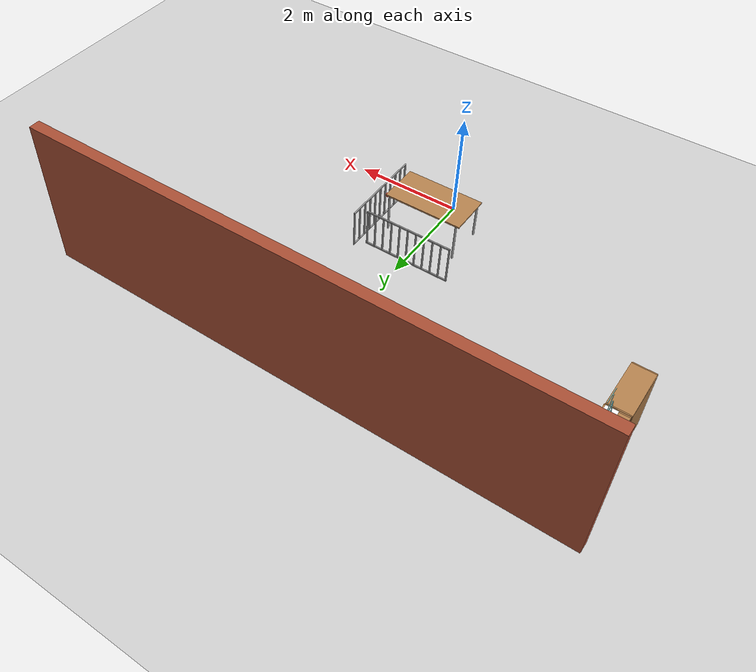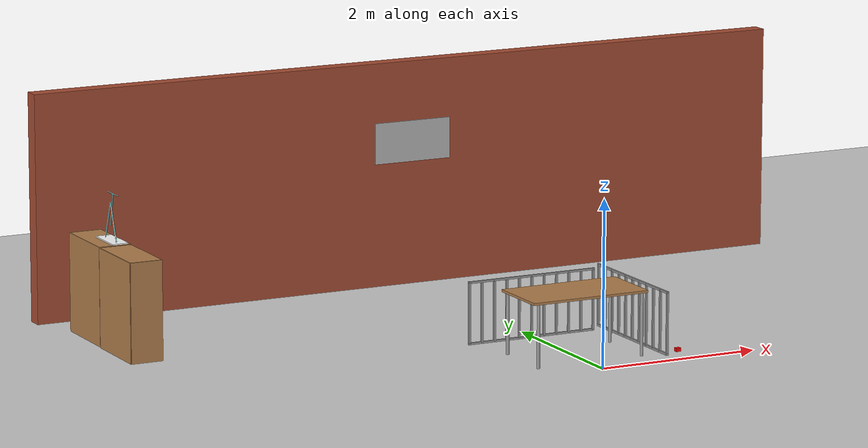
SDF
<sdf version="1.7">
 <world name="ufba_modificado">
  <model name="ground_plane">
   <static>1</static>
   <link name="link">
    <collision name="collision">
     <geometry><plane><normal>0 0 1</normal><size>100 100</size></plane></geometry>
     <surface>
      <contact><collide_bitmask>65535</collide_bitmask></contact>
      <friction><ode><mu>100</mu><mu2>50</mu2></ode></friction>
     </surface>
    </collision>
    <visual name="visual">
     <cast_shadows>0</cast_shadows>
     <geometry><plane><normal>0 0 1</normal><size>100 100</size></plane></geometry>
     <material>
      <script><uri>file://media/materials/scripts/gazebo.material</uri><name>Gazebo/Grey</name></script>
     </material>
    </visual>
   </link>
  </model>
  <model name="parede_norte">
   <static>1</static>
   <pose>0 5 1.4 0 -0 0</pose>
   <link name="link">
    <collision name="collision"><geometry><box><size>10 0.2 2.8</size></box></geometry></collision>
    <visual name="visual">
     <geometry><box><size>10 0.2 2.8</size></box></geometry>
     <material>
      <script><uri>file://media/materials/scripts/gazebo.material</uri><name>Gazebo/Bricks</name></script>
     </material>
    </visual>
   </link>
  </model>
  <model name="prateleira_1">
   <static>1</static>
   <link name="link">
    <inertial><mass>1</mass></inertial>
    <collision name="back">
     <pose>0 0.005 0.6 0 -0 0</pose>
     <geometry><box><size>0.9 0.01 1.2</size></box></geometry>
    </collision>
    <visual name="visual1">
     <pose>0 0.005 0.6 0 -0 0</pose>
     <geometry><box><size>0.9 0.01 1.2</size></box></geometry>
     <material>
      <script><uri>file://media/materials/scripts/gazebo.material</uri><name>Gazebo/Wood</name></script>
     </material>
    </visual>
    <collision name="left_side">
     <pose>0.45 -0.195 0.6 0 -0 0</pose>
     <geometry><box><size>0.02 0.4 1.2</size></box></geometry>
    </collision>
    <visual name="visual2">
     <pose>0.45 -0.195 0.6 0 -0 0</pose>
     <geometry><box><size>0.02 0.4 1.2</size></box></geometry>
     <material>
      <script><uri>file://media/materials/scripts/gazebo.material</uri><name>Gazebo/Wood</name></script>
     </material>
    </visual>
    <collision name="right_side">
     <pose>-0.45 -0.195 0.6 0 -0 0</pose>
     <geometry><box><size>0.02 0.4 1.2</size></box></geometry>
    </collision>
    <visual name="visual3">
     <pose>-0.45 -0.195 0.6 0 -0 0</pose>
     <geometry><box><size>0.02 0.4 1.2</size></box></geometry>
     <material>
      <script><uri>file://media/materials/scripts/gazebo.material</uri><name>Gazebo/Wood</name></script>
     </material>
    </visual>
    <collision name="bottom">
     <pose>0 -0.195 0.03 0 -0 0</pose>
     <geometry><box><size>0.88 0.4 0.06</size></box></geometry>
    </collision>
    <visual name="visual4">
     <pose>0 -0.195 0.03 0 -0 0</pose>
     <geometry><box><size>0.88 0.4 0.06</size></box></geometry>
     <material>
      <script><uri>file://media/materials/scripts/gazebo.material</uri><name>Gazebo/Wood</name></script>
     </material>
    </visual>
    <collision name="top">
     <pose>0 -0.195 1.19 0 -0 0</pose>
     <geometry><box><size>0.88 0.4 0.02</size></box></geometry>
    </collision>
    <visual name="visual5">
     <pose>0 -0.195 1.19 0 -0 0</pose>
     <geometry><box><size>0.88 0.4 0.02</size></box></geometry>
     <material>
      <script><uri>file://media/materials/scripts/gazebo.material</uri><name>Gazebo/Wood</name></script>
     </material>
    </visual>
    <collision name="low_shelf">
     <pose>0 -0.195 0.43 0 -0 0</pose>
     <geometry><box><size>0.88 0.4 0.02</size></box></geometry>
    </collision>
    <visual name="visual6">
     <pose>0 -0.195 0.43 0 -0 0</pose>
     <geometry><box><size>0.88 0.4 0.02</size></box></geometry>
     <material>
      <script><uri>file://media/materials/scripts/gazebo.material</uri><name>Gazebo/Wood</name></script>
     </material>
    </visual>
    <collision name="high_shelf">
     <pose>0 -0.195 0.8 0 -0 0</pose>
     <geometry><box><size>0.88 0.4 0.02</size></box></geometry>
    </collision>
    <visual name="visual7">
     <pose>0 -0.195 0.8 0 -0 0</pose>
     <geometry><box><size>0.88 0.4 0.02</size></box></geometry>
     <material>
      <script><uri>file://media/materials/scripts/gazebo.material</uri><name>Gazebo/Wood</name></script>
     </material>
    </visual>
   </link>
   <pose>-4.77065 3.0608 0 0 -0 1.5707</pose>
  </model>
  <model name="unit_box_red_100">
   <link name="link">
    <inertial>
     <mass>0.1</mass>
     <inertia>
      <ixx>5.763e-05</ixx>
      <ixy>0</ixy>
      <ixz>0</ixz>
      <iyy>6.331e-05</iyy>
      <iyz>0</iyz>
      <izz>6.119e-05</izz>
     </inertia>
    </inertial>
    <visual name="visual">
     <geometry><box><size>0.063346 0.05771 0.059872</size></box></geometry>
     <material>
      <script><name>Gazebo/Grey</name><uri>file://media/materials/scripts/gazebo.material</uri></script>
      <ambient>1 0 0 1</ambient>
      <shader type="vertex"><normal_map>__default__</normal_map></shader>
      <diffuse>0.7 0.7 0.7 1</diffuse>
      <specular>0.01 0.01 0.01 1</specular>
      <emissive>0 0 0 1</emissive>
     </material>
    </visual>
    <collision name="collision">
     <geometry><box><size>0.063346 0.05771 0.059872</size></box></geometry>
     <surface>
      <friction>
       <ode><mu>100</mu><mu2>100</mu2><fdir1>0 0 0</fdir1><slip1>0</slip1><slip2>0</slip2></ode>
       <torsional>
        <coefficient>1</coefficient>
        <patch_radius>0</patch_radius>
        <surface_radius>0</surface_radius>
        <use_patch_radius>1</use_patch_radius>
        <ode><slip>0</slip></ode>
       </torsional>
      </friction>
      <bounce><restitution_coefficient>0</restitution_coefficient><threshold>1e+06</threshold></bounce>
      <contact>
       <collide_without_contact>0</collide_without_contact>
       <collide_without_contact_bitmask>1</collide_without_contact_bitmask>
       <collide_bitmask>1</collide_bitmask>
       <ode>
        <soft_cfm>0</soft_cfm>
        <soft_erp>0.2</soft_erp>
        <kp>1e+13</kp>
        <kd>1</kd>
        <max_vel>0.01</max_vel>
        <min_depth>0</min_depth>
       </ode>
       <bullet>
        <split_impulse>1</split_impulse>
        <split_impulse_penetration_threshold>-0.01</split_impulse_penetration_threshold>
        <soft_cfm>0</soft_cfm>
        <soft_erp>0.2</soft_erp>
        <kp>1e+13</kp>
        <kd>1</kd>
       </bullet>
      </contact>
     </surface>
    </collision>
   </link>
   <static>0</static>
   <pose>1.21138 0.388999 0 0 -0 0</pose>
  </model>
  <model name="placa_ufba_na_parede">
   <static>1</static>
   <pose>0 4.89 1.8 0 -0 0</pose>
   <link name="link">
    <visual name="visual">
     <geometry><box><size>1.024 0.01 0.512</size></box></geometry>
     <material>
      <script><uri>file://materials/scripts/ufba_logo.material</uri><name>Ufba/Logo</name></script>
     </material>
    </visual>
   </link>
  </model>
  <model name="prateleira_1_clone">
   <static>1</static>
   <link name="link">
    <inertial><mass>1</mass></inertial>
    <collision name="back">
     <pose>0 0.005 0.6 0 -0 0</pose>
     <geometry><box><size>0.9 0.01 1.2</size></box></geometry>
    </collision>
    <visual name="visual1">
     <pose>0 0.005 0.6 0 -0 0</pose>
     <geometry><box><size>0.9 0.01 1.2</size></box></geometry>
     <material>
      <script><uri>file://media/materials/scripts/gazebo.material</uri><name>Gazebo/Wood</name></script>
     </material>
    </visual>
    <collision name="left_side">
     <pose>0.45 -0.195 0.6 0 -0 0</pose>
     <geometry><box><size>0.02 0.4 1.2</size></box></geometry>
    </collision>
    <visual name="visual2">
     <pose>0.45 -0.195 0.6 0 -0 0</pose>
     <geometry><box><size>0.02 0.4 1.2</size></box></geometry>
     <material>
      <script><uri>file://media/materials/scripts/gazebo.material</uri><name>Gazebo/Wood</name></script>
     </material>
    </visual>
    <collision name="right_side">
     <pose>-0.45 -0.195 0.6 0 -0 0</pose>
     <geometry><box><size>0.02 0.4 1.2</size></box></geometry>
    </collision>
    <visual name="visual3">
     <pose>-0.45 -0.195 0.6 0 -0 0</pose>
     <geometry><box><size>0.02 0.4 1.2</size></box></geometry>
     <material>
      <script><uri>file://media/materials/scripts/gazebo.material</uri><name>Gazebo/Wood</name></script>
     </material>
    </visual>
    <collision name="bottom">
     <pose>0 -0.195 0.03 0 -0 0</pose>
     <geometry><box><size>0.88 0.4 0.06</size></box></geometry>
    </collision>
    <visual name="visual4">
     <pose>0 -0.195 0.03 0 -0 0</pose>
     <geometry><box><size>0.88 0.4 0.06</size></box></geometry>
     <material>
      <script><uri>file://media/materials/scripts/gazebo.material</uri><name>Gazebo/Wood</name></script>
     </material>
    </visual>
    <collision name="top">
     <pose>0 -0.195 1.19 0 -0 0</pose>
     <geometry><box><size>0.88 0.4 0.02</size></box></geometry>
    </collision>
    <visual name="visual5">
     <pose>0 -0.195 1.19 0 -0 0</pose>
     <geometry><box><size>0.88 0.4 0.02</size></box></geometry>
     <material>
      <script><uri>file://media/materials/scripts/gazebo.material</uri><name>Gazebo/Wood</name></script>
     </material>
    </visual>
    <collision name="low_shelf">
     <pose>0 -0.195 0.43 0 -0 0</pose>
     <geometry><box><size>0.88 0.4 0.02</size></box></geometry>
    </collision>
    <visual name="visual6">
     <pose>0 -0.195 0.43 0 -0 0</pose>
     <geometry><box><size>0.88 0.4 0.02</size></box></geometry>
     <material>
      <script><uri>file://media/materials/scripts/gazebo.material</uri><name>Gazebo/Wood</name></script>
     </material>
    </visual>
    <collision name="high_shelf">
     <pose>0 -0.195 0.8 0 -0 0</pose>
     <geometry><box><size>0.88 0.4 0.02</size></box></geometry>
    </collision>
    <visual name="visual7">
     <pose>0 -0.195 0.8 0 -0 0</pose>
     <geometry><box><size>0.88 0.4 0.02</size></box></geometry>
     <material>
      <script><uri>file://media/materials/scripts/gazebo.material</uri><name>Gazebo/Wood</name></script>
     </material>
    </visual>
   </link>
   <pose>-4.76009 3.98886 0 0 -0 1.5707</pose>
  </model>
  <model name="pendulum">
   <link name="base">
    <inertial>
     <inertia><ixx>1</ixx><ixy>0</ixy><ixz>0</ixz><iyy>1</iyy><iyz>0</iyz><izz>1</izz></inertia>
     <mass>1</mass>
    </inertial>
    <visual name="vis_plate_on_ground">
     <pose>-0 0.001 0.0005 0 -0 0</pose>
     <geometry><box><size>0.2 0.5 0.015</size></box></geometry>
     <material>
      <ambient>1 1 1 1</ambient>
      <diffuse>1 1 1 1</diffuse>
      <specular>1 1 1 1</specular>
      <pbr>
       <metal>
        <albedo_map>materials/Wood/Wood_COLOR.jpg</albedo_map>
        <normal_map>materials/Wood/Wood_NORM.jpg</normal_map>
        <roughness_map>materials/Wood/Wood_ROUGH.jpg</roughness_map>
       </metal>
      </pbr>
     </material>
    </visual>
    <visual name="vis_pole">
     <pose>-0.01375 0.0819 0.225 0.349 -0 0</pose>
     <geometry><cylinder><length>0.4788</length><radius>0.007</radius></cylinder></geometry>
     <material>
      <ambient>0.66 1 1 1</ambient>
      <diffuse>0.66 1 1 1</diffuse>
      <specular>0.66 1 1 1</specular>
      <pbr><metal><metalness>0.9</metalness></metal></pbr>
     </material>
    </visual>
    <visual name="vis_pole2">
     <pose>-0.01375 -0.0819 0.225 -0.349 0 0</pose>
     <geometry><cylinder><length>0.4788</length><radius>0.007</radius></cylinder></geometry>
     <material>
      <ambient>0.66 1 1 1</ambient>
      <diffuse>0.66 1 1 1</diffuse>
      <specular>0.66 1 1 1</specular>
      <pbr><metal><metalness>0.9</metalness></metal></pbr>
     </material>
    </visual>
    <collision name="col_plate_on_ground">
     <pose>-0 0.001 0.0005 0 -0 0</pose>
     <geometry><box><size>0.2 0.5 0.015</size></box></geometry>
     <density>2710.0</density>
    </collision>
    <collision name="col_pole">
     <pose>-0.01375 0.0819 0.225 0.349 -0 0</pose>
     <geometry><cylinder><length>0.4788</length><radius>0.007</radius></cylinder></geometry>
     <density>2710</density>
    </collision>
    <collision name="col_pole2">
     <pose>-0.01375 -0.0819 0.225 -0.349 0 0</pose>
     <geometry><cylinder><length>0.4788</length><radius>0.007</radius></cylinder></geometry>
     <density>2710</density>
    </collision>
   </link>
   <link name="upper_link">
    <pose>0 0.017 0.355 0.2 -0 0</pose>
    <inertial>
     <inertia><ixx>1</ixx><ixy>0</ixy><ixz>0</ixz><iyy>1</iyy><iyz>0</iyz><izz>1</izz></inertia>
     <mass>1</mass>
    </inertial>
    <visual name="vis_upper_joint">
     <pose>-0.0025 0 0.0875 3.14159 1.57079 3.14159</pose>
     <geometry><cylinder><radius>0.005</radius><length>0.015</length></cylinder></geometry>
     <material>
      <ambient>0.66 1 1 1</ambient>
      <diffuse>0.66 1 1 1</diffuse>
      <specular>0.66 1 1 1</specular>
      <pbr><metal><metalness>0.9</metalness></metal></pbr>
     </material>
    </visual>
    <visual name="vis_bob2">
     <pose>0.01 0 0.2 3.14159 1.57079 3.14159</pose>
     <geometry><cylinder><radius>0.005</radius><length>0.02</length></cylinder></geometry>
     <material>
      <ambient>0.66 1 1 1</ambient>
      <diffuse>0.66 1 1 1</diffuse>
      <specular>0.66 1 1 1</specular>
      <pbr><metal><metalness>0.9</metalness></metal></pbr>
     </material>
    </visual>
    <visual name="vis_cylinder">
     <pose>0.01 0 0 0 -0 0</pose>
     <geometry><cylinder><radius>0.005</radius><length>0.395</length></cylinder></geometry>
     <material>
      <ambient>0.66 1 1 1</ambient>
      <diffuse>0.66 1 1 1</diffuse>
      <specular>0.66 1 1 1</specular>
      <pbr><metal><metalness>0.9</metalness></metal></pbr>
     </material>
    </visual>
    <collision name="col_upper_joint">
     <pose>-0.0025 0 0.0875 3.14159 1.57079 3.14159</pose>
     <geometry><cylinder><radius>0.01</radius><length>0.015</length></cylinder></geometry>
     <density>2710</density>
    </collision>
    <collision name="col_bob2">
     <pose>0.01 0 0.207 3.14159 1.57079 3.14159</pose>
     <geometry><cylinder><radius>0.01</radius><length>0.02</length></cylinder></geometry>
     <density>2710</density>
    </collision>
    <collision name="col_cylinder">
     <pose>0.01 0 0 0 -0 0</pose>
     <geometry><cylinder><radius>0.005</radius><length>0.395</length></cylinder></geometry>
     <density>2710</density>
    </collision>
   </link>
   <link name="lower_link">
    <pose>0.025 -0.02 0.55 -1.57 0 0</pose>
    <inertial>
     <inertia><ixx>1</ixx><ixy>0</ixy><ixz>0</ixz><iyy>1</iyy><iyz>0</iyz><izz>1</izz></inertia>
     <mass>1</mass>
    </inertial>
    <visual name="vis_cylinder">
     <pose>0 0 0.025 0 -0 0</pose>
     <geometry><cylinder><radius>0.005</radius><length>0.3</length></cylinder></geometry>
     <material>
      <ambient>0.66 1 1 1</ambient>
      <diffuse>0.66 1 1 1</diffuse>
      <specular>0.66 1 1 1</specular>
      <pbr><metal><metalness>0.9</metalness></metal></pbr>
     </material>
    </visual>
    <collision name="col_cylinder">
     <pose>0 0 0.025 0 -0 0</pose>
     <geometry><cylinder><radius>0.005</radius><length>0.3</length></cylinder></geometry>
     <density>2710</density>
    </collision>
   </link>
   <joint name="upper_joint" type="revolute">
    <pose>-0.0025 0 0.0875 0 -0 0</pose>
    <parent>base</parent>
    <child>upper_link</child>
    <axis>
     <xyz>1 0 0</xyz>
     <limit><lower>-1e+16</lower><upper>1e+16</upper></limit>
     <dynamics><spring_reference>0</spring_reference><spring_stiffness>0</spring_stiffness></dynamics>
    </axis>
   </joint>
   <joint name="lower_joint" type="revolute">
    <pose relative_to="upper_link">0.01 0 0.2 0 -0 0</pose>
    <parent>upper_link</parent>
    <child>lower_link</child>
    <axis>
     <xyz>1 0 0</xyz>
     <limit><lower>-1e+16</lower><upper>1e+16</upper></limit>
     <dynamics><spring_reference>0</spring_reference><spring_stiffness>0</spring_stiffness></dynamics>
    </axis>
   </joint>
   <pose>-4.49231 3.79783 1.207 -5e-06 1e-06 -9.7e-05</pose>
  </model>
  <model name="mesa_escritorio_clone">
   <static>1</static>
   <link name="link">
    <collision name="surface">
     <pose>0 0 1 0 -0 0</pose>
     <geometry><box><size>1.5 0.8 0.03</size></box></geometry>
     <surface><friction><ode><mu>0.6</mu><mu2>0.6</mu2></ode></friction></surface>
    </collision>
    <visual name="visual1">
     <pose>0 0 1 0 -0 0</pose>
     <geometry><box><size>1.5 0.8 0.03</size></box></geometry>
     <material>
      <script><uri>file://media/materials/scripts/gazebo.material</uri><name>Gazebo/Wood</name></script>
     </material>
    </visual>
    <collision name="front_left_leg">
     <pose>0.68 0.38 0.5 0 -0 0</pose>
     <geometry><cylinder><radius>0.02</radius><length>1</length></cylinder></geometry>
    </collision>
    <visual name="front_left_leg">
     <pose>0.68 0.38 0.5 0 -0 0</pose>
     <geometry><cylinder><radius>0.02</radius><length>1</length></cylinder></geometry>
     <material>
      <script><uri>file://media/materials/scripts/gazebo.material</uri><name>Gazebo/Grey</name></script>
     </material>
    </visual>
    <collision name="front_right_leg">
     <pose>0.68 -0.38 0.5 0 -0 0</pose>
     <geometry><cylinder><radius>0.02</radius><length>1</length></cylinder></geometry>
    </collision>
    <visual name="front_right_leg">
     <pose>0.68 -0.38 0.5 0 -0 0</pose>
     <geometry><cylinder><radius>0.02</radius><length>1</length></cylinder></geometry>
     <material>
      <script><uri>file://media/materials/scripts/gazebo.material</uri><name>Gazebo/Grey</name></script>
     </material>
    </visual>
    <collision name="back_right_leg">
     <pose>-0.68 -0.38 0.5 0 -0 0</pose>
     <geometry><cylinder><radius>0.02</radius><length>1</length></cylinder></geometry>
    </collision>
    <visual name="back_right_leg">
     <pose>-0.68 -0.38 0.5 0 -0 0</pose>
     <geometry><cylinder><radius>0.02</radius><length>1</length></cylinder></geometry>
     <material>
      <script><uri>file://media/materials/scripts/gazebo.material</uri><name>Gazebo/Grey</name></script>
     </material>
    </visual>
    <collision name="back_left_leg">
     <pose>-0.68 0.38 0.5 0 -0 0</pose>
     <geometry><cylinder><radius>0.02</radius><length>1</length></cylinder></geometry>
    </collision>
    <visual name="back_left_leg">
     <pose>-0.68 0.38 0.5 0 -0 0</pose>
     <geometry><cylinder><radius>0.02</radius><length>1</length></cylinder></geometry>
     <material>
      <script><uri>file://media/materials/scripts/gazebo.material</uri><name>Gazebo/Grey</name></script>
     </material>
    </visual>
   </link>
   <pose>0.039142 0.755668 -0.24392 0 -0 0</pose>
  </model>
  <model name="pet_gate_wide_clone_clone">
   <static>1</static>
   <link name="link">
    <collision name="bar1_collision">
     <pose>0 0 0.381 0 -0 0</pose>
     <geometry><box><size>0.0254 0.0254 0.7366</size></box></geometry>
    </collision>
    <visual name="bar1_visual">
     <pose>0 0 0.381 0 -0 0</pose>
     <geometry><box><size>0.0254 0.0254 0.7366</size></box></geometry>
     <material>
      <script><uri>file://media/materials/scripts/gazebo.material</uri><name>Gazebo/Grey</name></script>
     </material>
    </visual>
    <collision name="bar2_collision">
     <pose>0.1651 0 0.381 0 -0 0</pose>
     <geometry><box><size>0.0254 0.0254 0.7366</size></box></geometry>
    </collision>
    <visual name="bar2_visual">
     <pose>0.1651 0 0.381 0 -0 0</pose>
     <geometry><box><size>0.0254 0.0254 0.7366</size></box></geometry>
     <material>
      <script><uri>file://media/materials/scripts/gazebo.material</uri><name>Gazebo/Grey</name></script>
     </material>
    </visual>
    <collision name="bar3_collision">
     <pose>0.3302 0 0.381 0 -0 0</pose>
     <geometry><box><size>0.0254 0.0254 0.7366</size></box></geometry>
    </collision>
    <visual name="bar3_visual">
     <pose>0.3302 0 0.381 0 -0 0</pose>
     <geometry><box><size>0.0254 0.0254 0.7366</size></box></geometry>
     <material>
      <script><uri>file://media/materials/scripts/gazebo.material</uri><name>Gazebo/Grey</name></script>
     </material>
    </visual>
    <collision name="bar4_collision">
     <pose>0.4953 0 0.381 0 -0 0</pose>
     <geometry><box><size>0.0254 0.0254 0.7366</size></box></geometry>
    </collision>
    <visual name="bar4_visual">
     <pose>0.4953 0 0.381 0 -0 0</pose>
     <geometry><box><size>0.0254 0.0254 0.7366</size></box></geometry>
     <material>
      <script><uri>file://media/materials/scripts/gazebo.material</uri><name>Gazebo/Grey</name></script>
     </material>
    </visual>
    <collision name="bar5_collision">
     <pose>0.6604 0 0.381 0 -0 0</pose>
     <geometry><box><size>0.0254 0.0254 0.7366</size></box></geometry>
    </collision>
    <visual name="bar5_visual">
     <pose>0.6604 0 0.381 0 -0 0</pose>
     <geometry><box><size>0.0254 0.0254 0.7366</size></box></geometry>
     <material>
      <script><uri>file://media/materials/scripts/gazebo.material</uri><name>Gazebo/Grey</name></script>
     </material>
    </visual>
    <collision name="bar6_collision">
     <pose>0.8255 0 0.381 0 -0 0</pose>
     <geometry><box><size>0.0254 0.0254 0.7366</size></box></geometry>
    </collision>
    <visual name="bar6_visual">
     <pose>0.8255 0 0.381 0 -0 0</pose>
     <geometry><box><size>0.0254 0.0254 0.7366</size></box></geometry>
     <material>
      <script><uri>file://media/materials/scripts/gazebo.material</uri><name>Gazebo/Grey</name></script>
     </material>
    </visual>
    <collision name="bar7_collision">
     <pose>0.9906 0 0.381 0 -0 0</pose>
     <geometry><box><size>0.0254 0.0254 0.7366</size></box></geometry>
    </collision>
    <visual name="bar7_visual">
     <pose>0.9906 0 0.381 0 -0 0</pose>
     <geometry><box><size>0.0254 0.0254 0.7366</size></box></geometry>
     <material>
      <script><uri>file://media/materials/scripts/gazebo.material</uri><name>Gazebo/Grey</name></script>
     </material>
    </visual>
    <collision name="bar8_collision">
     <pose>1.1557 0 0.381 0 -0 0</pose>
     <geometry><box><size>0.0254 0.0254 0.7366</size></box></geometry>
    </collision>
    <visual name="bar8_visual">
     <pose>1.1557 0 0.381 0 -0 0</pose>
     <geometry><box><size>0.0254 0.0254 0.7366</size></box></geometry>
     <material>
      <script><uri>file://media/materials/scripts/gazebo.material</uri><name>Gazebo/Grey</name></script>
     </material>
    </visual>
    <collision name="bar9_collision">
     <pose>1.3208 0 0.381 0 -0 0</pose>
     <geometry><box><size>0.0254 0.0254 0.7366</size></box></geometry>
    </collision>
    <visual name="bar9_visual">
     <pose>1.3208 0 0.381 0 -0 0</pose>
     <geometry><box><size>0.0254 0.0254 0.7366</size></box></geometry>
     <material>
      <script><uri>file://media/materials/scripts/gazebo.material</uri><name>Gazebo/Grey</name></script>
     </material>
    </visual>
    <collision name="bar10_collision">
     <pose>1.4859 0 0.381 0 -0 0</pose>
     <geometry><box><size>0.0254 0.0254 0.7366</size></box></geometry>
    </collision>
    <visual name="bar10_visual">
     <pose>1.4859 0 0.381 0 -0 0</pose>
     <geometry><box><size>0.0254 0.0254 0.7366</size></box></geometry>
     <material>
      <script><uri>file://media/materials/scripts/gazebo.material</uri><name>Gazebo/Grey</name></script>
     </material>
    </visual>
    <collision name="bar11_collision">
     <pose>1.651 0 0.381 0 -0 0</pose>
     <geometry><box><size>0.0254 0.0254 0.7366</size></box></geometry>
    </collision>
    <visual name="bar11_visual">
     <pose>1.651 0 0.381 0 -0 0</pose>
     <geometry><box><size>0.0254 0.0254 0.7366</size></box></geometry>
     <material>
      <script><uri>file://media/materials/scripts/gazebo.material</uri><name>Gazebo/Grey</name></script>
     </material>
    </visual>
    <collision name="top_rail_collision">
     <pose>0.8255 0 0.7493 0 -0 0</pose>
     <geometry><box><size>1.6764 0.0254 0.0254</size></box></geometry>
    </collision>
    <visual name="top_rail_visual">
     <pose>0.8255 0 0.7493 0 -0 0</pose>
     <geometry><box><size>1.6764 0.0254 0.0254</size></box></geometry>
     <material>
      <script><uri>file://media/materials/scripts/gazebo.material</uri><name>Gazebo/Grey</name></script>
     </material>
    </visual>
    <collision name="bottom_rail_collision">
     <pose>0.8255 0 0.0127 0 -0 0</pose>
     <geometry><box><size>1.6764 0.0254 0.0254</size></box></geometry>
    </collision>
    <visual name="bottom_rail_visual">
     <pose>0.8255 0 0.0127 0 -0 0</pose>
     <geometry><box><size>1.6764 0.0254 0.0254</size></box></geometry>
     <material>
      <script><uri>file://media/materials/scripts/gazebo.material</uri><name>Gazebo/Grey</name></script>
     </material>
    </visual>
   </link>
   <pose>0.973742 0.226168 0 0 -0 1.57357</pose>
  </model>
  <model name="pet_gate_wide_clone_0">
   <static>1</static>
   <link name="link">
    <collision name="bar1_collision">
     <pose>0 0 0.381 0 -0 0</pose>
     <geometry><box><size>0.0254 0.0254 0.7366</size></box></geometry>
    </collision>
    <visual name="bar1_visual">
     <pose>0 0 0.381 0 -0 0</pose>
     <geometry><box><size>0.0254 0.0254 0.7366</size></box></geometry>
     <material>
      <script><uri>file://media/materials/scripts/gazebo.material</uri><name>Gazebo/Grey</name></script>
     </material>
    </visual>
    <collision name="bar2_collision">
     <pose>0.1651 0 0.381 0 -0 0</pose>
     <geometry><box><size>0.0254 0.0254 0.7366</size></box></geometry>
    </collision>
    <visual name="bar2_visual">
     <pose>0.1651 0 0.381 0 -0 0</pose>
     <geometry><box><size>0.0254 0.0254 0.7366</size></box></geometry>
     <material>
      <script><uri>file://media/materials/scripts/gazebo.material</uri><name>Gazebo/Grey</name></script>
     </material>
    </visual>
    <collision name="bar3_collision">
     <pose>0.3302 0 0.381 0 -0 0</pose>
     <geometry><box><size>0.0254 0.0254 0.7366</size></box></geometry>
    </collision>
    <visual name="bar3_visual">
     <pose>0.3302 0 0.381 0 -0 0</pose>
     <geometry><box><size>0.0254 0.0254 0.7366</size></box></geometry>
     <material>
      <script><uri>file://media/materials/scripts/gazebo.material</uri><name>Gazebo/Grey</name></script>
     </material>
    </visual>
    <collision name="bar4_collision">
     <pose>0.4953 0 0.381 0 -0 0</pose>
     <geometry><box><size>0.0254 0.0254 0.7366</size></box></geometry>
    </collision>
    <visual name="bar4_visual">
     <pose>0.4953 0 0.381 0 -0 0</pose>
     <geometry><box><size>0.0254 0.0254 0.7366</size></box></geometry>
     <material>
      <script><uri>file://media/materials/scripts/gazebo.material</uri><name>Gazebo/Grey</name></script>
     </material>
    </visual>
    <collision name="bar5_collision">
     <pose>0.6604 0 0.381 0 -0 0</pose>
     <geometry><box><size>0.0254 0.0254 0.7366</size></box></geometry>
    </collision>
    <visual name="bar5_visual">
     <pose>0.6604 0 0.381 0 -0 0</pose>
     <geometry><box><size>0.0254 0.0254 0.7366</size></box></geometry>
     <material>
      <script><uri>file://media/materials/scripts/gazebo.material</uri><name>Gazebo/Grey</name></script>
     </material>
    </visual>
    <collision name="bar6_collision">
     <pose>0.8255 0 0.381 0 -0 0</pose>
     <geometry><box><size>0.0254 0.0254 0.7366</size></box></geometry>
    </collision>
    <visual name="bar6_visual">
     <pose>0.8255 0 0.381 0 -0 0</pose>
     <geometry><box><size>0.0254 0.0254 0.7366</size></box></geometry>
     <material>
      <script><uri>file://media/materials/scripts/gazebo.material</uri><name>Gazebo/Grey</name></script>
     </material>
    </visual>
    <collision name="bar7_collision">
     <pose>0.9906 0 0.381 0 -0 0</pose>
     <geometry><box><size>0.0254 0.0254 0.7366</size></box></geometry>
    </collision>
    <visual name="bar7_visual">
     <pose>0.9906 0 0.381 0 -0 0</pose>
     <geometry><box><size>0.0254 0.0254 0.7366</size></box></geometry>
     <material>
      <script><uri>file://media/materials/scripts/gazebo.material</uri><name>Gazebo/Grey</name></script>
     </material>
    </visual>
    <collision name="bar8_collision">
     <pose>1.1557 0 0.381 0 -0 0</pose>
     <geometry><box><size>0.0254 0.0254 0.7366</size></box></geometry>
    </collision>
    <visual name="bar8_visual">
     <pose>1.1557 0 0.381 0 -0 0</pose>
     <geometry><box><size>0.0254 0.0254 0.7366</size></box></geometry>
     <material>
      <script><uri>file://media/materials/scripts/gazebo.material</uri><name>Gazebo/Grey</name></script>
     </material>
    </visual>
    <collision name="bar9_collision">
     <pose>1.3208 0 0.381 0 -0 0</pose>
     <geometry><box><size>0.0254 0.0254 0.7366</size></box></geometry>
    </collision>
    <visual name="bar9_visual">
     <pose>1.3208 0 0.381 0 -0 0</pose>
     <geometry><box><size>0.0254 0.0254 0.7366</size></box></geometry>
     <material>
      <script><uri>file://media/materials/scripts/gazebo.material</uri><name>Gazebo/Grey</name></script>
     </material>
    </visual>
    <collision name="bar10_collision">
     <pose>1.4859 0 0.381 0 -0 0</pose>
     <geometry><box><size>0.0254 0.0254 0.7366</size></box></geometry>
    </collision>
    <visual name="bar10_visual">
     <pose>1.4859 0 0.381 0 -0 0</pose>
     <geometry><box><size>0.0254 0.0254 0.7366</size></box></geometry>
     <material>
      <script><uri>file://media/materials/scripts/gazebo.material</uri><name>Gazebo/Grey</name></script>
     </material>
    </visual>
    <collision name="bar11_collision">
     <pose>1.651 0 0.381 0 -0 0</pose>
     <geometry><box><size>0.0254 0.0254 0.7366</size></box></geometry>
    </collision>
    <visual name="bar11_visual">
     <pose>1.651 0 0.381 0 -0 0</pose>
     <geometry><box><size>0.0254 0.0254 0.7366</size></box></geometry>
     <material>
      <script><uri>file://media/materials/scripts/gazebo.material</uri><name>Gazebo/Grey</name></script>
     </material>
    </visual>
    <collision name="top_rail_collision">
     <pose>0.8255 0 0.7493 0 -0 0</pose>
     <geometry><box><size>1.6764 0.0254 0.0254</size></box></geometry>
    </collision>
    <visual name="top_rail_visual">
     <pose>0.8255 0 0.7493 0 -0 0</pose>
     <geometry><box><size>1.6764 0.0254 0.0254</size></box></geometry>
     <material>
      <script><uri>file://media/materials/scripts/gazebo.material</uri><name>Gazebo/Grey</name></script>
     </material>
    </visual>
    <collision name="bottom_rail_collision">
     <pose>0.8255 0 0.0127 0 -0 0</pose>
     <geometry><box><size>1.6764 0.0254 0.0254</size></box></geometry>
    </collision>
    <visual name="bottom_rail_visual">
     <pose>0.8255 0 0.0127 0 -0 0</pose>
     <geometry><box><size>1.6764 0.0254 0.0254</size></box></geometry>
     <material>
      <script><uri>file://media/materials/scripts/gazebo.material</uri><name>Gazebo/Grey</name></script>
     </material>
    </visual>
   </link>
   <pose>-0.847873 1.70845 0 0 -0 0</pose>
  </model>
 </world>
</sdf>
